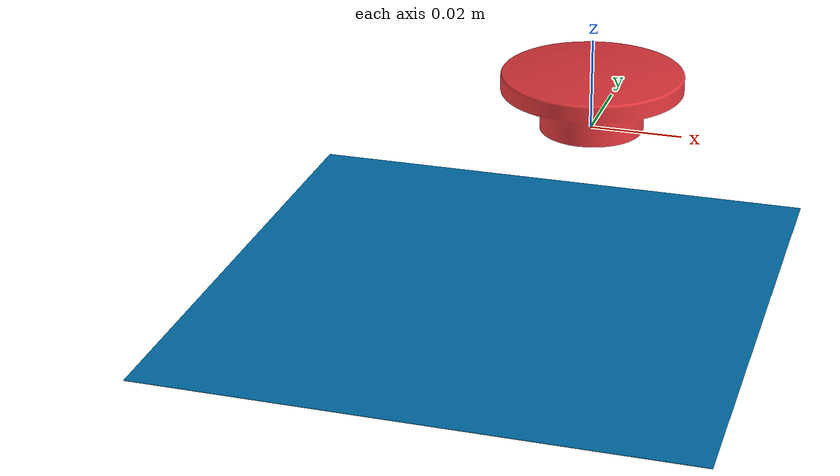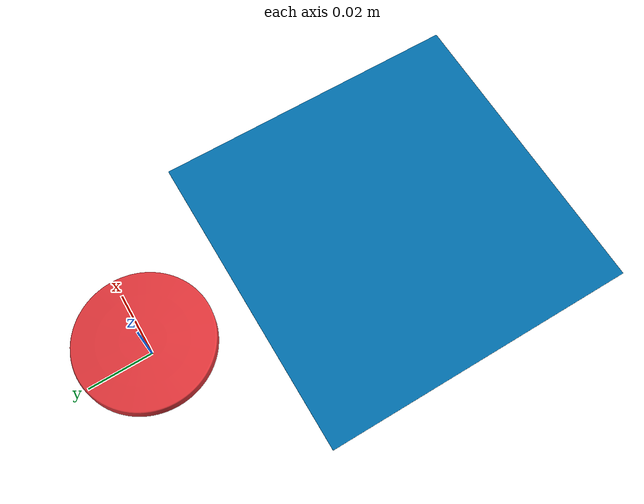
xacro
<?xml version="1.0" encoding="utf-8"?>
<robot xmlns:xacro="http://www.ros.org/wiki/xacro" name="timon">
  <link name ="box_link">
  </link>

  <xacro:include filename="$(find manipulator_description)/urdf/botao.xacro"/>
  <xacro:include filename="$(find manipulator_description)/urdf/tag.xacro"/>
</robot>

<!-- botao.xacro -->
<robot name="botao" xmlns:xacro="http://ros.org/wiki/xacro">

  <link name="botao">
    <visual>
      <origin rpy="0 0 0" xyz="0 0 0"/>
      <geometry>
        <mesh filename="package://manipulator_description/meshes/botao.dae"/>
      </geometry>
    </visual>
    <collision>
      <origin rpy="0 0 0" xyz="0 0 0"/>
      <geometry>
        <mesh filename="package://manipulator_description/meshes/botao.stl"/>
      </geometry>
    </collision>
    <inertial>
      <origin rpy="0 0 0" xyz="0 0 0"/>
      <mass value="0.00954509"/>
      <inertia ixx="8.08010910e-7" ixy="0" ixz="0" iyx="0" iyy="1.34192268e-6" iyz="0" izx="0" izy="0" izz="8.08010910e-7"/>
    </inertial>
  </link>
  <link name="fake_botao"/>
  <link name="botao_press"/>

 <joint name="caixa_to_botao" type="fixed">
    <parent link="box_link"/>
    <child link="botao"/>
    <origin rpy="0 0 0" xyz="0 0 0"/>
  </joint>

  <joint name="botao_pressed" type="fixed">
    <parent link="botao"/>
    <child link="botao_press"/>
    <origin rpy="0 0 0" xyz="0 0 0.075"/>
  </joint>

  <joint name ="botao_fake" type ="fixed">
    <parent link="botao"/>
    <child link="fake_botao"/>
    <origin rpy="0.0 0.0 0.0" xyz="0.0 0.0 0.25"/>
  </joint>

</robot>

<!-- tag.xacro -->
<robot xmlns:xacro="http://www.ros.org/wiki/xacro" name="tag">
    <link name="tag_aruco_4">
        <inertial>
            <origin xyz="0 0 0" rpy="0 0 0 "/>
            <mass value="1.0"/>
            <inertia ixx="0.0741666666"  ixy="0.0"  ixz="0.0" iyy="0.0585461666" iyz="0.0" izz="0.02604166666" />
        </inertial>
        <collision>
            <origin xyz="0.0 0.0 0.0" rpy="0.0 0.0 0.0"/>
            <geometry>
                <box size="0.1 0.1 0.1"/>
            </geometry>
        </collision>
        <visual>
            <origin xyz="0.0 0.0 0.0" rpy="0 0 0"/>
            <geometry>
                <mesh filename="package://manipulator_description/meshes/tag.dae"/>
            </geometry>
        </visual>
    </link>

        <gazebo reference="tag_aruco_4">
            <kp>100000.0</kp>
            <kd>100000.0</kd>
            <mu1>0.1</mu1>
            <mu2>0.1</mu2>
            <fdir1>1 0 0</fdir1>
        </gazebo>

    <joint name="box_to_tag" type="fixed">
        <origin rpy="0 0 0" xyz="0.0 -0.08 0"/> <!--caixa na vertical: rpy="0 0 0" -->  <!-- horizontal: rpy="0 0 3.1415" -->
        <parent link="botao"/>
        <child link = "tag_aruco_4"/>
    </joint>

</robot>
